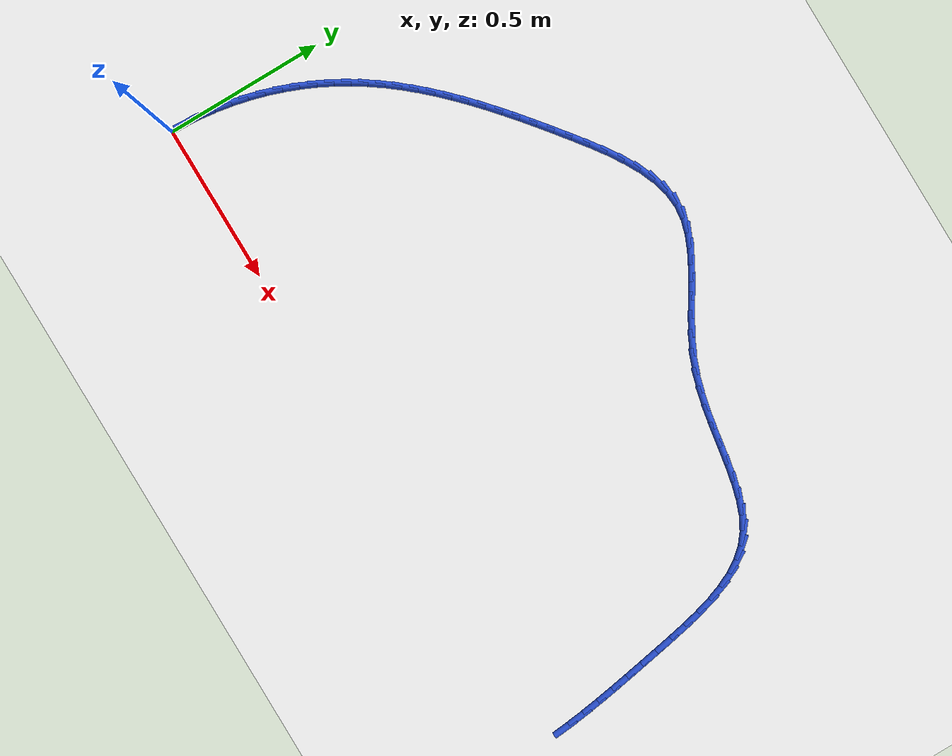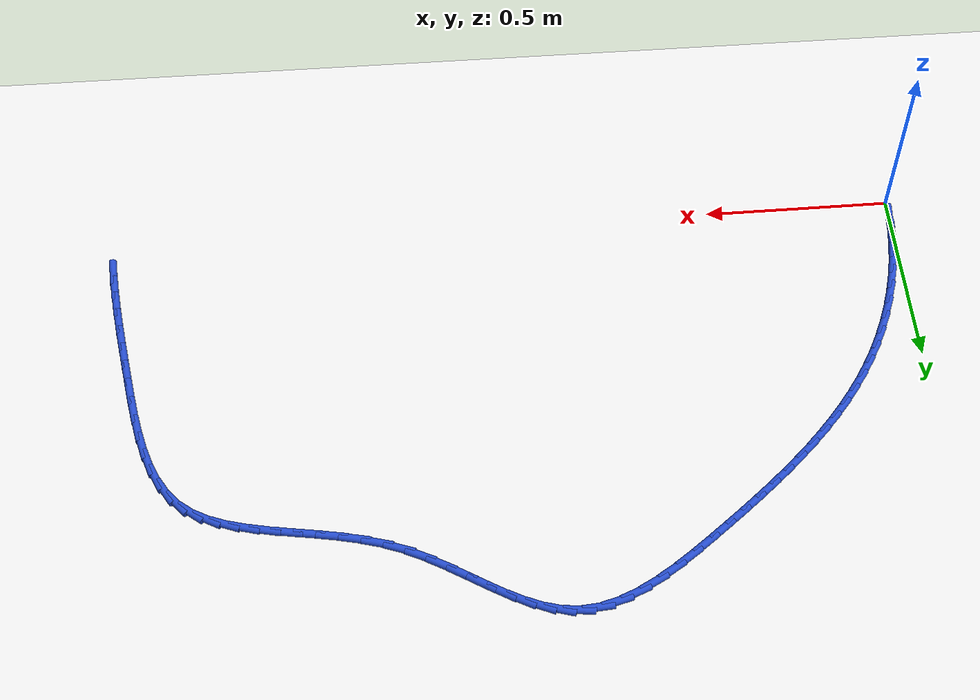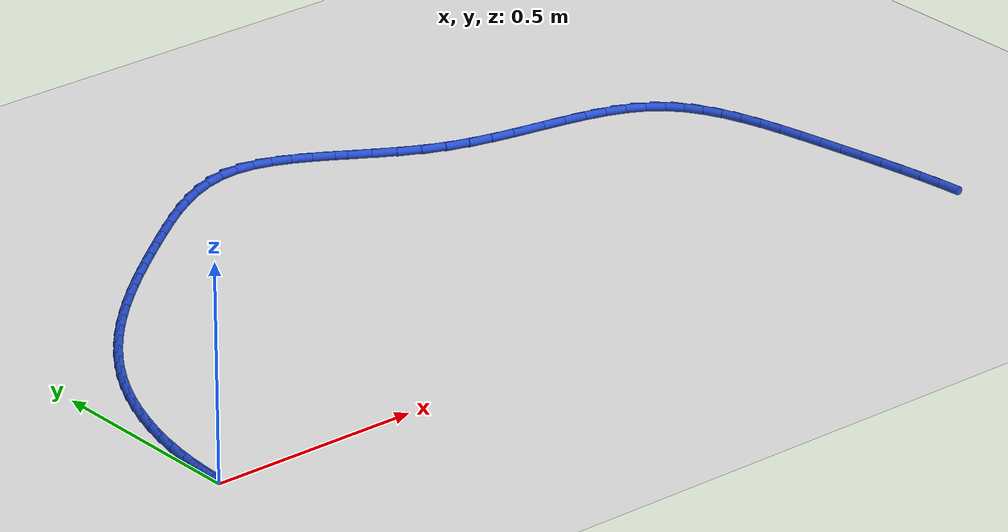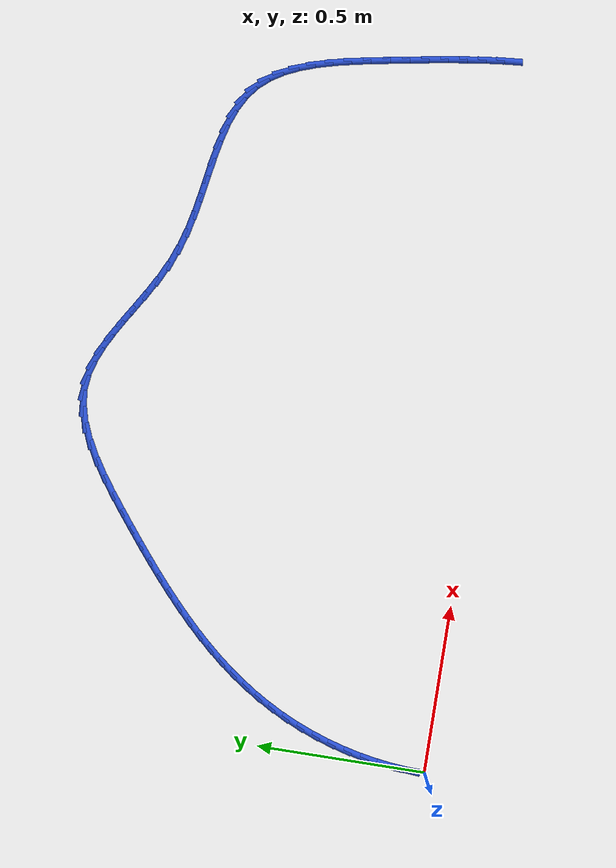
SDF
<sdf version="1.6">
 <world name="default">
  <model name="ground_plane">
   <static>1</static>
   <link name="link">
    <collision name="collision">
     <geometry><plane><normal>0 0 1</normal><size>100 100</size></plane></geometry>
     <surface><friction><ode><mu>100</mu><mu2>50</mu2></ode></friction></surface>
    </collision>
    <visual name="visual">
     <cast_shadows>0</cast_shadows>
     <geometry><plane><normal>0 0 1</normal><size>100 100</size></plane></geometry>
     <material>
      <script><uri>file://media/materials/scripts/gazebo.material</uri><name>Gazebo/WhiteGlow</name></script>
     </material>
    </visual>
   </link>
  </model>
  <model name="line">
   <link name="link_1">
    <pose>0.001663653287756565 0.052666637800049335 0.01 0 1.57 1.4861492066462814</pose>
    <collision name="collision">
     <geometry><cylinder><radius>0.01</radius><length>0.08</length></cylinder></geometry>
    </collision>
    <visual name="visual">
     <material>
      <script><name>Gazebo/Blue</name><uri>file://media/materials/scripts/gazebo.material</uri></script>
     </material>
     <geometry><cylinder><radius>0.01</radius><length>0.08</length></cylinder></geometry>
    </visual>
   </link>
   <link name="link_2">
    <pose>0.006117909710848581 0.105162373988531 0.01 0 1.57 1.4343111689263157</pose>
    <collision name="collision">
     <geometry><cylinder><radius>0.01</radius><length>0.08</length></cylinder></geometry>
    </collision>
    <visual name="visual">
     <material>
      <script><name>Gazebo/Blue</name><uri>file://media/materials/scripts/gazebo.material</uri></script>
     </material>
     <geometry><cylinder><radius>0.01</radius><length>0.08</length></cylinder></geometry>
    </visual>
   </link>
   <link name="link_3">
    <pose>0.013279382765549016 0.15730686644795666 0.01 0 1.57 1.3834298962071694</pose>
    <collision name="collision">
     <geometry><cylinder><radius>0.01</radius><length>0.08</length></cylinder></geometry>
    </collision>
    <visual name="visual">
     <material>
      <script><name>Gazebo/Blue</name><uri>file://media/materials/scripts/gazebo.material</uri></script>
     </material>
     <geometry><cylinder><radius>0.01</radius><length>0.08</length></cylinder></geometry>
    </visual>
   </link>
   <link name="link_4">
    <pose>0.023064685948130915 0.20891977306083817 0.01 0 1.57 1.333218046921215</pose>
    <collision name="collision">
     <geometry><cylinder><radius>0.01</radius><length>0.08</length></cylinder></geometry>
    </collision>
    <visual name="visual">
     <material>
      <script><name>Gazebo/Blue</name><uri>file://media/materials/scripts/gazebo.material</uri></script>
     </material>
     <geometry><cylinder><radius>0.01</radius><length>0.08</length></cylinder></geometry>
    </visual>
   </link>
   <link name="link_5">
    <pose>0.035390432754867286 0.2598207517096874 0.01 0 1.57 1.2833768783342432</pose>
    <collision name="collision">
     <geometry><cylinder><radius>0.01</radius><length>0.08</length></cylinder></geometry>
    </collision>
    <visual name="visual">
     <material>
      <script><name>Gazebo/Blue</name><uri>file://media/materials/scripts/gazebo.material</uri></script>
     </material>
     <geometry><cylinder><radius>0.01</radius><length>0.08</length></cylinder></geometry>
    </visual>
   </link>
   <link name="link_6">
    <pose>0.05017323668203114 0.309829460277016 0.01 0 1.57 1.233596564569405</pose>
    <collision name="collision">
     <geometry><cylinder><radius>0.01</radius><length>0.08</length></cylinder></geometry>
    </collision>
    <visual name="visual">
     <material>
      <script><name>Gazebo/Blue</name><uri>file://media/materials/scripts/gazebo.material</uri></script>
     </material>
     <geometry><cylinder><radius>0.01</radius><length>0.08</length></cylinder></geometry>
    </visual>
   </link>
   <link name="link_7">
    <pose>0.0673297112258955 0.3587655566453359 0.01 0 1.57 1.1835556589924168</pose>
    <collision name="collision">
     <geometry><cylinder><radius>0.01</radius><length>0.08</length></cylinder></geometry>
    </collision>
    <visual name="visual">
     <material>
      <script><name>Gazebo/Blue</name><uri>file://media/materials/scripts/gazebo.material</uri></script>
     </material>
     <geometry><cylinder><radius>0.01</radius><length>0.08</length></cylinder></geometry>
    </visual>
   </link>
   <link name="link_8">
    <pose>0.08677646988273338 0.40644869869715894 0.01 0 1.57 1.1329200305331832</pose>
    <collision name="collision">
     <geometry><cylinder><radius>0.01</radius><length>0.08</length></cylinder></geometry>
    </collision>
    <visual name="visual">
     <material>
      <script><name>Gazebo/Blue</name><uri>file://media/materials/scripts/gazebo.material</uri></script>
     </material>
     <geometry><cylinder><radius>0.01</radius><length>0.08</length></cylinder></geometry>
    </visual>
   </link>
   <link name="link_9">
    <pose>0.10843012614881778 0.4526985443149967 0.01 0 1.57 1.0815321605335688</pose>
    <collision name="collision">
     <geometry><cylinder><radius>0.01</radius><length>0.08</length></cylinder></geometry>
    </collision>
    <visual name="visual">
     <material>
      <script><name>Gazebo/Blue</name><uri>file://media/materials/scripts/gazebo.material</uri></script>
     </material>
     <geometry><cylinder><radius>0.01</radius><length>0.08</length></cylinder></geometry>
    </visual>
   </link>
   <link name="link_10">
    <pose>0.1322072949652205 0.4973552564515526 0.01 0 1.57 1.0310223452264908</pose>
    <collision name="collision">
     <geometry><cylinder><radius>0.01</radius><length>0.08</length></cylinder></geometry>
    </collision>
    <visual name="visual">
     <material>
      <script><name>Gazebo/Blue</name><uri>file://media/materials/scripts/gazebo.material</uri></script>
     </material>
     <geometry><cylinder><radius>0.01</radius><length>0.08</length></cylinder></geometry>
    </visual>
   </link>
   <link name="link_11">
    <pose>0.1580246045290581 0.540447132309163 0.01 0 1.57 0.9827420106683838</pose>
    <collision name="collision">
     <geometry><cylinder><radius>0.01</radius><length>0.08</length></cylinder></geometry>
    </collision>
    <visual name="visual">
     <material>
      <script><name>Gazebo/Blue</name><uri>file://media/materials/scripts/gazebo.material</uri></script>
     </material>
     <geometry><cylinder><radius>0.01</radius><length>0.08</length></cylinder></geometry>
    </visual>
   </link>
   <link name="link_12">
    <pose>0.1857986901627119 0.5821035932455064 0.01 0 1.57 0.9371385001233103</pose>
    <collision name="collision">
     <geometry><cylinder><radius>0.01</radius><length>0.08</length></cylinder></geometry>
    </collision>
    <visual name="visual">
     <material>
      <script><name>Gazebo/Blue</name><uri>file://media/materials/scripts/gazebo.material</uri></script>
     </material>
     <geometry><cylinder><radius>0.01</radius><length>0.08</length></cylinder></geometry>
    </visual>
   </link>
   <link name="link_13">
    <pose>0.21544618725701023 0.6224550320408648 0.01 0 1.57 0.89456150861376</pose>
    <collision name="collision">
     <geometry><cylinder><radius>0.01</radius><length>0.08</length></cylinder></geometry>
    </collision>
    <visual name="visual">
     <material>
      <script><name>Gazebo/Blue</name><uri>file://media/materials/scripts/gazebo.material</uri></script>
     </material>
     <geometry><cylinder><radius>0.01</radius><length>0.08</length></cylinder></geometry>
    </visual>
   </link>
   <link name="link_14">
    <pose>0.24688373120278134 0.6616318414755198 0.01 0 1.57 0.8552697950122611</pose>
    <collision name="collision">
     <geometry><cylinder><radius>0.01</radius><length>0.08</length></cylinder></geometry>
    </collision>
    <visual name="visual">
     <material>
      <script><name>Gazebo/Blue</name><uri>file://media/materials/scripts/gazebo.material</uri></script>
     </material>
     <geometry><cylinder><radius>0.01</radius><length>0.08</length></cylinder></geometry>
    </visual>
   </link>
   <link name="link_15">
    <pose>0.2800279573908536 0.6997644143297529 0.01 0 1.57 0.8194357437499168</pose>
    <collision name="collision">
     <geometry><cylinder><radius>0.01</radius><length>0.08</length></cylinder></geometry>
    </collision>
    <visual name="visual">
     <material>
      <script><name>Gazebo/Blue</name><uri>file://media/materials/scripts/gazebo.material</uri></script>
     </material>
     <geometry><cylinder><radius>0.01</radius><length>0.08</length></cylinder></geometry>
    </visual>
   </link>
   <link name="link_16">
    <pose>0.31479550121205535 0.7369831433838461 0.01 0 1.57 0.7871547785094704</pose>
    <collision name="collision">
     <geometry><cylinder><radius>0.01</radius><length>0.08</length></cylinder></geometry>
    </collision>
    <visual name="visual">
     <material>
      <script><name>Gazebo/Blue</name><uri>file://media/materials/scripts/gazebo.material</uri></script>
     </material>
     <geometry><cylinder><radius>0.01</radius><length>0.08</length></cylinder></geometry>
    </visual>
   </link>
   <link name="link_17">
    <pose>0.35110299805721473 0.7734184214180804 0.01 0 1.57 0.758457503878691</pose>
    <collision name="collision">
     <geometry><cylinder><radius>0.01</radius><length>0.08</length></cylinder></geometry>
    </collision>
    <visual name="visual">
     <material>
      <script><name>Gazebo/Blue</name><uri>file://media/materials/scripts/gazebo.material</uri></script>
     </material>
     <geometry><cylinder><radius>0.01</radius><length>0.08</length></cylinder></geometry>
    </visual>
   </link>
   <link name="link_18">
    <pose>0.3888670833171601 0.809200641212738 0.01 0 1.57 0.7333227314232693</pose>
    <collision name="collision">
     <geometry><cylinder><radius>0.01</radius><length>0.08</length></cylinder></geometry>
    </collision>
    <visual name="visual">
     <material>
      <script><name>Gazebo/Blue</name><uri>file://media/materials/scripts/gazebo.material</uri></script>
     </material>
     <geometry><cylinder><radius>0.01</radius><length>0.08</length></cylinder></geometry>
    </visual>
   </link>
   <link name="link_19">
    <pose>0.42800439238271987 0.8444601955481006 0.01 0 1.57 0.7116900187587877</pose>
    <collision name="collision">
     <geometry><cylinder><radius>0.01</radius><length>0.08</length></cylinder></geometry>
    </collision>
    <visual name="visual">
     <material>
      <script><name>Gazebo/Blue</name><uri>file://media/materials/scripts/gazebo.material</uri></script>
     </material>
     <geometry><cylinder><radius>0.01</radius><length>0.08</length></cylinder></geometry>
    </visual>
   </link>
   <link name="link_20">
    <pose>0.4684315606447224 0.8793274772044499 0.01 0 1.57 0.6934708526481724</pose>
    <collision name="collision">
     <geometry><cylinder><radius>0.01</radius><length>0.08</length></cylinder></geometry>
    </collision>
    <visual name="visual">
     <material>
      <script><name>Gazebo/Blue</name><uri>file://media/materials/scripts/gazebo.material</uri></script>
     </material>
     <geometry><cylinder><radius>0.01</radius><length>0.08</length></cylinder></geometry>
    </visual>
   </link>
   <link name="link_21">
    <pose>0.5100652234939957 0.9139328789620673 0.01 0 1.57 0.6785580396042737</pose>
    <collision name="collision">
     <geometry><cylinder><radius>0.01</radius><length>0.08</length></cylinder></geometry>
    </collision>
    <visual name="visual">
     <material>
      <script><name>Gazebo/Blue</name><uri>file://media/materials/scripts/gazebo.material</uri></script>
     </material>
     <geometry><cylinder><radius>0.01</radius><length>0.08</length></cylinder></geometry>
    </visual>
   </link>
   <link name="link_22">
    <pose>0.5528220163213685 0.9484067936012346 0.01 0 1.57 0.6668331879907164</pose>
    <collision name="collision">
     <geometry><cylinder><radius>0.01</radius><length>0.08</length></cylinder></geometry>
    </collision>
    <visual name="visual">
     <material>
      <script><name>Gazebo/Blue</name><uri>file://media/materials/scripts/gazebo.material</uri></script>
     </material>
     <geometry><cylinder><radius>0.01</radius><length>0.08</length></cylinder></geometry>
    </visual>
   </link>
   <link name="link_23">
    <pose>0.5966185745176686 0.9828796139022333 0.01 0 1.57 0.6576211231059376</pose>
    <collision name="collision">
     <geometry><cylinder><radius>0.01</radius><length>0.08</length></cylinder></geometry>
    </collision>
    <visual name="visual">
     <material>
      <script><name>Gazebo/Blue</name><uri>file://media/materials/scripts/gazebo.material</uri></script>
     </material>
     <geometry><cylinder><radius>0.01</radius><length>0.08</length></cylinder></geometry>
    </visual>
   </link>
   <link name="link_24">
    <pose>0.6413677291974267 1.0174393933726644 0.01 0 1.57 0.6412307615484328</pose>
    <collision name="collision">
     <geometry><cylinder><radius>0.01</radius><length>0.08</length></cylinder></geometry>
    </collision>
    <visual name="visual">
     <material>
      <script><name>Gazebo/Blue</name><uri>file://media/materials/scripts/gazebo.material</uri></script>
     </material>
     <geometry><cylinder><radius>0.01</radius><length>0.08</length></cylinder></geometry>
    </visual>
   </link>
   <link name="link_25">
    <pose>0.6869162998035253 1.0514395159149037 0.01 0 1.57 0.6088968697088346</pose>
    <collision name="collision">
     <geometry><cylinder><radius>0.01</radius><length>0.08</length></cylinder></geometry>
    </collision>
    <visual name="visual">
     <material>
      <script><name>Gazebo/Blue</name><uri>file://media/materials/scripts/gazebo.material</uri></script>
     </material>
     <geometry><cylinder><radius>0.01</radius><length>0.08</length></cylinder></geometry>
    </visual>
   </link>
   <link name="link_26">
    <pose>0.7330551994019867 1.0836111615877906 0.01 0 1.57 0.5583011070429497</pose>
    <collision name="collision">
     <geometry><cylinder><radius>0.01</radius><length>0.08</length></cylinder></geometry>
    </collision>
    <visual name="visual">
     <material>
      <script><name>Gazebo/Blue</name><uri>file://media/materials/scripts/gazebo.material</uri></script>
     </material>
     <geometry><cylinder><radius>0.01</radius><length>0.08</length></cylinder></geometry>
    </visual>
   </link>
   <link name="link_27">
    <pose>0.7795735753481039 1.11266585916771 0.01 0 1.57 0.4857714715882074</pose>
    <collision name="collision">
     <geometry><cylinder><radius>0.01</radius><length>0.08</length></cylinder></geometry>
    </collision>
    <visual name="visual">
     <material>
      <script><name>Gazebo/Blue</name><uri>file://media/materials/scripts/gazebo.material</uri></script>
     </material>
     <geometry><cylinder><radius>0.01</radius><length>0.08</length></cylinder></geometry>
    </visual>
   </link>
   <link name="link_28">
    <pose>0.826260574997169 1.137315137431047 0.01 0 1.57 0.38599214735946846</pose>
    <collision name="collision">
     <geometry><cylinder><radius>0.01</radius><length>0.08</length></cylinder></geometry>
    </collision>
    <visual name="visual">
     <material>
      <script><name>Gazebo/Blue</name><uri>file://media/materials/scripts/gazebo.material</uri></script>
     </material>
     <geometry><cylinder><radius>0.01</radius><length>0.08</length></cylinder></geometry>
    </visual>
   </link>
   <link name="link_29">
    <pose>0.8729053457044751 1.1562705251541854 0.01 0 1.57 0.2525740236414458</pose>
    <collision name="collision">
     <geometry><cylinder><radius>0.01</radius><length>0.08</length></cylinder></geometry>
    </collision>
    <visual name="visual">
     <material>
      <script><name>Gazebo/Blue</name><uri>file://media/materials/scripts/gazebo.material</uri></script>
     </material>
     <geometry><cylinder><radius>0.01</radius><length>0.08</length></cylinder></geometry>
    </visual>
   </link>
   <link name="link_30">
    <pose>0.9192970348253149 1.1682435511135105 0.01 0 1.57 0.08043653314995193</pose>
    <collision name="collision">
     <geometry><cylinder><radius>0.01</radius><length>0.08</length></cylinder></geometry>
    </collision>
    <visual name="visual">
     <material>
      <script><name>Gazebo/Blue</name><uri>file://media/materials/scripts/gazebo.material</uri></script>
     </material>
     <geometry><cylinder><radius>0.01</radius><length>0.08</length></cylinder></geometry>
    </visual>
   </link>
   <link name="link_31">
    <pose>0.9652248012571178 1.1719458094481667 0.01 0 1.57 -0.1163850904062608</pose>
    <collision name="collision">
     <geometry><cylinder><radius>0.01</radius><length>0.08</length></cylinder></geometry>
    </collision>
    <visual name="visual">
     <material>
      <script><name>Gazebo/Blue</name><uri>file://media/materials/scripts/gazebo.material</uri></script>
     </material>
     <geometry><cylinder><radius>0.01</radius><length>0.08</length></cylinder></geometry>
    </visual>
   </link>
   <link name="link_32">
    <pose>1.01057576964659 1.1666436712268087 0.01 0 1.57 -0.28408035586841246</pose>
    <collision name="collision">
     <geometry><cylinder><radius>0.01</radius><length>0.08</length></cylinder></geometry>
    </collision>
    <visual name="visual">
     <material>
      <script><name>Gazebo/Blue</name><uri>file://media/materials/scripts/gazebo.material</uri></script>
     </material>
     <geometry><cylinder><radius>0.01</radius><length>0.08</length></cylinder></geometry>
    </visual>
   </link>
   <link name="link_33">
    <pose>1.0555729333404766 1.153505521308692 0.01 0 1.57 -0.40750639434144925</pose>
    <collision name="collision">
     <geometry><cylinder><radius>0.01</radius><length>0.08</length></cylinder></geometry>
    </collision>
    <visual name="visual">
     <material>
      <script><name>Gazebo/Blue</name><uri>file://media/materials/scripts/gazebo.material</uri></script>
     </material>
     <geometry><cylinder><radius>0.01</radius><length>0.08</length></cylinder></geometry>
    </visual>
   </link>
   <link name="link_34">
    <pose>1.1005112062279097 1.134107028302432 0.01 0 1.57 -0.4897885811258451</pose>
    <collision name="collision">
     <geometry><cylinder><radius>0.01</radius><length>0.08</length></cylinder></geometry>
    </collision>
    <visual name="visual">
     <material>
      <script><name>Gazebo/Blue</name><uri>file://media/materials/scripts/gazebo.material</uri></script>
     </material>
     <geometry><cylinder><radius>0.01</radius><length>0.08</length></cylinder></geometry>
    </visual>
   </link>
   <link name="link_35">
    <pose>1.1456855021980208 1.110023860816644 0.01 0 1.57 -0.5366954863860767</pose>
    <collision name="collision">
     <geometry><cylinder><radius>0.01</radius><length>0.08</length></cylinder></geometry>
    </collision>
    <visual name="visual">
     <material>
      <script><name>Gazebo/Blue</name><uri>file://media/materials/scripts/gazebo.material</uri></script>
     </material>
     <geometry><cylinder><radius>0.01</radius><length>0.08</length></cylinder></geometry>
    </visual>
   </link>
   <link name="link_36">
    <pose>1.191390735139941 1.0828316874599435 0.01 0 1.57 -0.5530722045809712</pose>
    <collision name="collision">
     <geometry><cylinder><radius>0.01</radius><length>0.08</length></cylinder></geometry>
    </collision>
    <visual name="visual">
     <material>
      <script><name>Gazebo/Blue</name><uri>file://media/materials/scripts/gazebo.material</uri></script>
     </material>
     <geometry><cylinder><radius>0.01</radius><length>0.08</length></cylinder></geometry>
    </visual>
   </link>
   <link name="link_37">
    <pose>1.237921818942802 1.0541061768409454 0.01 0 1.57 -0.541838982020594</pose>
    <collision name="collision">
     <geometry><cylinder><radius>0.01</radius><length>0.08</length></cylinder></geometry>
    </collision>
    <visual name="visual">
     <material>
      <script><name>Gazebo/Blue</name><uri>file://media/materials/scripts/gazebo.material</uri></script>
     </material>
     <geometry><cylinder><radius>0.01</radius><length>0.08</length></cylinder></geometry>
    </visual>
   </link>
   <link name="link_38">
    <pose>1.2855736674957363 1.0254229975682656 0.01 0 1.57 -0.5040634643130766</pose>
    <collision name="collision">
     <geometry><cylinder><radius>0.01</radius><length>0.08</length></cylinder></geometry>
    </collision>
    <visual name="visual">
     <material>
      <script><name>Gazebo/Blue</name><uri>file://media/materials/scripts/gazebo.material</uri></script>
     </material>
     <geometry><cylinder><radius>0.01</radius><length>0.08</length></cylinder></geometry>
    </visual>
   </link>
   <link name="link_39">
    <pose>1.3346411946878747 0.998357818250519 0.01 0 1.57 -0.4394543501513621</pose>
    <collision name="collision">
     <geometry><cylinder><radius>0.01</radius><length>0.08</length></cylinder></geometry>
    </collision>
    <visual name="visual">
     <material>
      <script><name>Gazebo/Blue</name><uri>file://media/materials/scripts/gazebo.material</uri></script>
     </material>
     <geometry><cylinder><radius>0.01</radius><length>0.08</length></cylinder></geometry>
    </visual>
   </link>
   <link name="link_40">
    <pose>1.3854193144083482 0.9744863074963215 0.01 0 1.57 -0.3507262794012471</pose>
    <collision name="collision">
     <geometry><cylinder><radius>0.01</radius><length>0.08</length></cylinder></geometry>
    </collision>
    <visual name="visual">
     <material>
      <script><name>Gazebo/Blue</name><uri>file://media/materials/scripts/gazebo.material</uri></script>
     </material>
     <geometry><cylinder><radius>0.01</radius><length>0.08</length></cylinder></geometry>
    </visual>
   </link>
   <link name="link_41">
    <pose>1.438133677303906 0.9552006647206823 0.01 0 1.57 -0.2691889851520683</pose>
    <collision name="collision">
     <geometry><cylinder><radius>0.01</radius><length>0.08</length></cylinder></geometry>
    </collision>
    <visual name="visual">
     <material>
      <script><name>Gazebo/Blue</name><uri>file://media/materials/scripts/gazebo.material</uri></script>
     </material>
     <geometry><cylinder><radius>0.01</radius><length>0.08</length></cylinder></geometry>
    </visual>
   </link>
   <link name="link_42">
    <pose>1.4923835661448572 0.9402339234486404 0.01 0 1.57 -0.2110830206173333</pose>
    <collision name="collision">
     <geometry><cylinder><radius>0.01</radius><length>0.08</length></cylinder></geometry>
    </collision>
    <visual name="visual">
     <material>
      <script><name>Gazebo/Blue</name><uri>file://media/materials/scripts/gazebo.material</uri></script>
     </material>
     <geometry><cylinder><radius>0.01</radius><length>0.08</length></cylinder></geometry>
    </visual>
   </link>
   <link name="link_43">
    <pose>1.5474355014762302 0.9284376739601039 0.01 0 1.57 -0.1756520246389826</pose>
    <collision name="collision">
     <geometry><cylinder><radius>0.01</radius><length>0.08</length></cylinder></geometry>
    </collision>
    <visual name="visual">
     <material>
      <script><name>Gazebo/Blue</name><uri>file://media/materials/scripts/gazebo.material</uri></script>
     </material>
     <geometry><cylinder><radius>0.01</radius><length>0.08</length></cylinder></geometry>
    </visual>
   </link>
   <link name="link_44">
    <pose>1.6025529327058043 0.9186553714974742 0.01 0 1.57 -0.16247595754100563</pose>
    <collision name="collision">
     <geometry><cylinder><radius>0.01</radius><length>0.08</length></cylinder></geometry>
    </collision>
    <visual name="visual">
     <material>
      <script><name>Gazebo/Blue</name><uri>file://media/materials/scripts/gazebo.material</uri></script>
     </material>
     <geometry><cylinder><radius>0.01</radius><length>0.08</length></cylinder></geometry>
    </visual>
   </link>
   <link name="link_45">
    <pose>1.6569993092413597 0.9097304713031529 0.01 0 1.57 -0.1721891409914015</pose>
    <collision name="collision">
     <geometry><cylinder><radius>0.01</radius><length>0.08</length></cylinder></geometry>
    </collision>
    <visual name="visual">
     <material>
      <script><name>Gazebo/Blue</name><uri>file://media/materials/scripts/gazebo.material</uri></script>
     </material>
     <geometry><cylinder><radius>0.01</radius><length>0.08</length></cylinder></geometry>
    </visual>
   </link>
   <link name="link_46">
    <pose>1.7100380804906767 0.9005064286195413 0.01 0 1.57 -0.20683901955095782</pose>
    <collision name="collision">
     <geometry><cylinder><radius>0.01</radius><length>0.08</length></cylinder></geometry>
    </collision>
    <visual name="visual">
     <material>
      <script><name>Gazebo/Blue</name><uri>file://media/materials/scripts/gazebo.material</uri></script>
     </material>
     <geometry><cylinder><radius>0.01</radius><length>0.08</length></cylinder></geometry>
    </visual>
   </link>
   <link name="link_47">
    <pose>1.7609326958615334 0.8898266986890415 0.01 0 1.57 -0.2700720028405007</pose>
    <collision name="collision">
     <geometry><cylinder><radius>0.01</radius><length>0.08</length></cylinder></geometry>
    </collision>
    <visual name="visual">
     <material>
      <script><name>Gazebo/Blue</name><uri>file://media/materials/scripts/gazebo.material</uri></script>
     </material>
     <geometry><cylinder><radius>0.01</radius><length>0.08</length></cylinder></geometry>
    </visual>
   </link>
   <link name="link_48">
    <pose>1.8089466047617109 0.8765347367540551 0.01 0 1.57 -0.36688150511911366</pose>
    <collision name="collision">
     <geometry><cylinder><radius>0.01</radius><length>0.08</length></cylinder></geometry>
    </collision>
    <visual name="visual">
     <material>
      <script><name>Gazebo/Blue</name><uri>file://media/materials/scripts/gazebo.material</uri></script>
     </material>
     <geometry><cylinder><radius>0.01</radius><length>0.08</length></cylinder></geometry>
    </visual>
   </link>
   <link name="link_49">
    <pose>1.8533432565989876 0.8594739980569835 0.01 0 1.57 -0.5021238487063592</pose>
    <collision name="collision">
     <geometry><cylinder><radius>0.01</radius><length>0.08</length></cylinder></geometry>
    </collision>
    <visual name="visual">
     <material>
      <script><name>Gazebo/Blue</name><uri>file://media/materials/scripts/gazebo.material</uri></script>
     </material>
     <geometry><cylinder><radius>0.01</radius><length>0.08</length></cylinder></geometry>
    </visual>
   </link>
   <link name="link_50">
    <pose>1.8933861007811443 0.8374879378402285 0.01 0 1.57 -0.6765465530038594</pose>
    <collision name="collision">
     <geometry><cylinder><radius>0.01</radius><length>0.08</length></cylinder></geometry>
    </collision>
    <visual name="visual">
     <material>
      <script><name>Gazebo/Blue</name><uri>file://media/materials/scripts/gazebo.material</uri></script>
     </material>
     <geometry><cylinder><radius>0.01</radius><length>0.08</length></cylinder></geometry>
    </visual>
   </link>
   <link name="link_51">
    <pose>1.928339600357944 0.8094214839771697 0.01 0 1.57 -0.8670450456559418</pose>
    <collision name="collision">
     <geometry><cylinder><radius>0.01</radius><length>0.08</length></cylinder></geometry>
    </collision>
    <visual name="visual">
     <material>
      <script><name>Gazebo/Blue</name><uri>file://media/materials/scripts/gazebo.material</uri></script>
     </material>
     <geometry><cylinder><radius>0.01</radius><length>0.08</length></cylinder></geometry>
    </visual>
   </link>
   <link name="link_52">
    <pose>1.9578411978969148 0.7746614333649892 0.01 0 1.57 -1.0270674163066604</pose>
    <collision name="collision">
     <geometry><cylinder><radius>0.01</radius><length>0.08</length></cylinder></geometry>
    </collision>
    <visual name="visual">
     <material>
      <script><name>Gazebo/Blue</name><uri>file://media/materials/scripts/gazebo.material</uri></script>
     </material>
     <geometry><cylinder><radius>0.01</radius><length>0.08</length></cylinder></geometry>
    </visual>
   </link>
   <link name="link_53">
    <pose>1.982456164689694 0.7339425433679718 0.01 0 1.57 -1.1506029352877238</pose>
    <collision name="collision">
     <geometry><cylinder><radius>0.01</radius><length>0.08</length></cylinder></geometry>
    </collision>
    <visual name="visual">
     <material>
      <script><name>Gazebo/Blue</name><uri>file://media/materials/scripts/gazebo.material</uri></script>
     </material>
     <geometry><cylinder><radius>0.01</radius><length>0.08</length></cylinder></geometry>
    </visual>
   </link>
   <link name="link_54">
    <pose>2.0028916174122218 0.6882056459905962 0.01 0 1.57 -1.242585170217418</pose>
    <collision name="collision">
     <geometry><cylinder><radius>0.01</radius><length>0.08</length></cylinder></geometry>
    </collision>
    <visual name="visual">
     <material>
      <script><name>Gazebo/Blue</name><uri>file://media/materials/scripts/gazebo.material</uri></script>
     </material>
     <geometry><cylinder><radius>0.01</radius><length>0.08</length></cylinder></geometry>
    </visual>
   </link>
   <link name="link_55">
    <pose>2.0198546727404385 0.6383915732373413 0.01 0 1.57 -1.3088250876682521</pose>
    <collision name="collision">
     <geometry><cylinder><radius>0.01</radius><length>0.08</length></cylinder></geometry>
    </collision>
    <visual name="visual">
     <material>
      <script><name>Gazebo/Blue</name><uri>file://media/materials/scripts/gazebo.material</uri></script>
     </material>
     <geometry><cylinder><radius>0.01</radius><length>0.08</length></cylinder></geometry>
    </visual>
   </link>
   <link name="link_56">
    <pose>2.0340524473502835 0.5854411571126863 0.01 0 1.57 -1.3541161886256718</pose>
    <collision name="collision">
     <geometry><cylinder><radius>0.01</radius><length>0.08</length></cylinder></geometry>
    </collision>
    <visual name="visual">
     <material>
      <script><name>Gazebo/Blue</name><uri>file://media/materials/scripts/gazebo.material</uri></script>
     </material>
     <geometry><cylinder><radius>0.01</radius><length>0.08</length></cylinder></geometry>
    </visual>
   </link>
   <link name="link_57">
    <pose>2.046192057917696 0.5302952296211092 0.01 0 1.57 -1.3817949051094254</pose>
    <collision name="collision">
     <geometry><cylinder><radius>0.01</radius><length>0.08</length></cylinder></geometry>
    </collision>
    <visual name="visual">
     <material>
      <script><name>Gazebo/Blue</name><uri>file://media/materials/scripts/gazebo.material</uri></script>
     </material>
     <geometry><cylinder><radius>0.01</radius><length>0.08</length></cylinder></geometry>
    </visual>
   </link>
   <link name="link_58">
    <pose>2.056980621118618 0.47389462276708855 0.01 0 1.57 -1.3938182047440433</pose>
    <collision name="collision">
     <geometry><cylinder><radius>0.01</radius><length>0.08</length></cylinder></geometry>
    </collision>
    <visual name="visual">
     <material>
      <script><name>Gazebo/Blue</name><uri>file://media/materials/scripts/gazebo.material</uri></script>
     </material>
     <geometry><cylinder><radius>0.01</radius><length>0.08</length></cylinder></geometry>
    </visual>
   </link>
   <link name="link_59">
    <pose>2.0671241538022933 0.41717909180212526 0.01 0 1.57 -1.3960772547100389</pose>
    <collision name="collision">
     <geometry><cylinder><radius>0.01</radius><length>0.08</length></cylinder></geometry>
    </collision>
    <visual name="visual">
     <material>
      <script><name>Gazebo/Blue</name><uri>file://media/materials/scripts/gazebo.material</uri></script>
     </material>
     <geometry><cylinder><radius>0.01</radius><length>0.08</length></cylinder></geometry>
    </visual>
   </link>
   <link name="link_60">
    <pose>2.077069937203041 0.36083508448354296 0.01 0 1.57 -1.4005266850823233</pose>
    <collision name="collision">
     <geometry><cylinder><radius>0.01</radius><length>0.08</length></cylinder></geometry>
    </collision>
    <visual name="visual">
     <material>
      <script><name>Gazebo/Blue</name><uri>file://media/materials/scripts/gazebo.material</uri></script>
     </material>
     <geometry><cylinder><radius>0.01</radius><length>0.08</length></cylinder></geometry>
    </visual>
   </link>
   <link name="link_61">
    <pose>2.0866748848574406 0.30497106643737226 0.01 0 1.57 -1.4089343572013433</pose>
    <collision name="collision">
     <geometry><cylinder><radius>0.01</radius><length>0.08</length></cylinder></geometry>
    </collision>
    <visual name="visual">
     <material>
      <script><name>Gazebo/Blue</name><uri>file://media/materials/scripts/gazebo.material</uri></script>
     </material>
     <geometry><cylinder><radius>0.01</radius><length>0.08</length></cylinder></geometry>
    </visual>
   </link>
   <link name="link_62">
    <pose>2.0957139600802273 0.24961527233516537 0.01 0 1.57 -1.421455659751101</pose>
    <collision name="collision">
     <geometry><cylinder><radius>0.01</radius><length>0.08</length></cylinder></geometry>
    </collision>
    <visual name="visual">
     <material>
      <script><name>Gazebo/Blue</name><uri>file://media/materials/scripts/gazebo.material</uri></script>
     </material>
     <geometry><cylinder><radius>0.01</radius><length>0.08</length></cylinder></geometry>
    </visual>
   </link>
   <link name="link_63">
    <pose>2.103962126186135 0.1947959368484756 0.01 0 1.57 -1.4382761603588348</pose>
    <collision name="collision">
     <geometry><cylinder><radius>0.01</radius><length>0.08</length></cylinder></geometry>
    </collision>
    <visual name="visual">
     <material>
      <script><name>Gazebo/Blue</name><uri>file://media/materials/scripts/gazebo.material</uri></script>
     </material>
     <geometry><cylinder><radius>0.01</radius><length>0.08</length></cylinder></geometry>
    </visual>
   </link>
   <link name="link_64">
    <pose>2.111194346489897 0.14054129464885617 0.01 0 1.57 -1.459608524067067</pose>
    <collision name="collision">
     <geometry><cylinder><radius>0.01</radius><length>0.08</length></cylinder></geometry>
    </collision>
    <visual name="visual">
     <material>
      <script><name>Gazebo/Blue</name><uri>file://media/materials/scripts/gazebo.material</uri></script>
     </material>
     <geometry><cylinder><radius>0.01</radius><length>0.08</length></cylinder></geometry>
    </visual>
   </link>
   <link name="link_65">
    <pose>2.1171855843062493 0.08687958040785955 0.01 0 1.57 -1.4856862225585183</pose>
    <collision name="collision">
     <geometry><cylinder><radius>0.01</radius><length>0.08</length></cylinder></geometry>
    </collision>
    <visual name="visual">
     <material>
      <script><name>Gazebo/Blue</name><uri>file://media/materials/scripts/gazebo.material</uri></script>
     </material>
     <geometry><cylinder><radius>0.01</radius><length>0.08</length></cylinder></geometry>
    </visual>
   </link>
   <link name="link_131">
    <pose>0.0016858448910858012 0.052667656666083154 0.01 0 1.57 1.538798140646817</pose>
    <collision name="collision">
     <geometry><cylinder><radius>0.01</radius><length>0.08</length></cylinder></geometry>
    </collision>
    <visual name="visual">
     <material>
      <script><name>Gazebo/Blue</name><uri>file://media/materials/scripts/gazebo.material</uri></script>
     </material>
     <geometry><cylinder><radius>0.01</radius><length>0.08</length></cylinder></geometry>
    </visual>
   </link>
  </model>
 </world>
</sdf>
